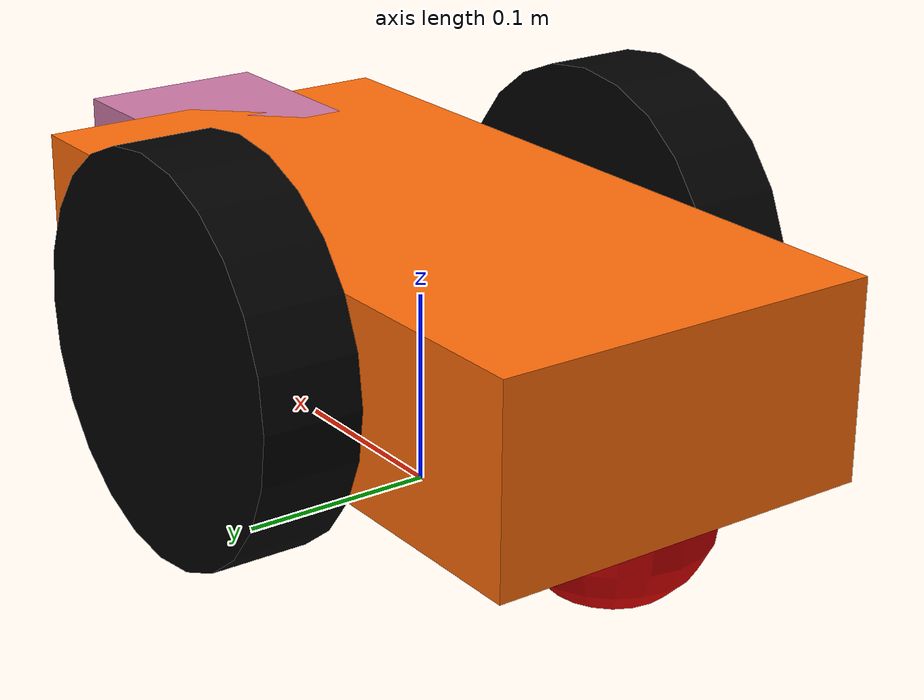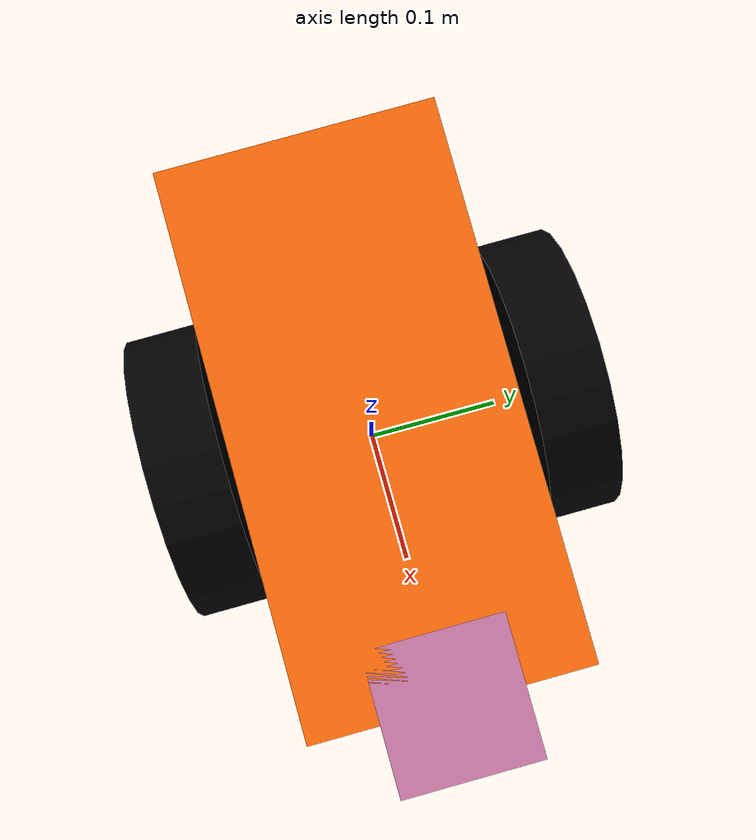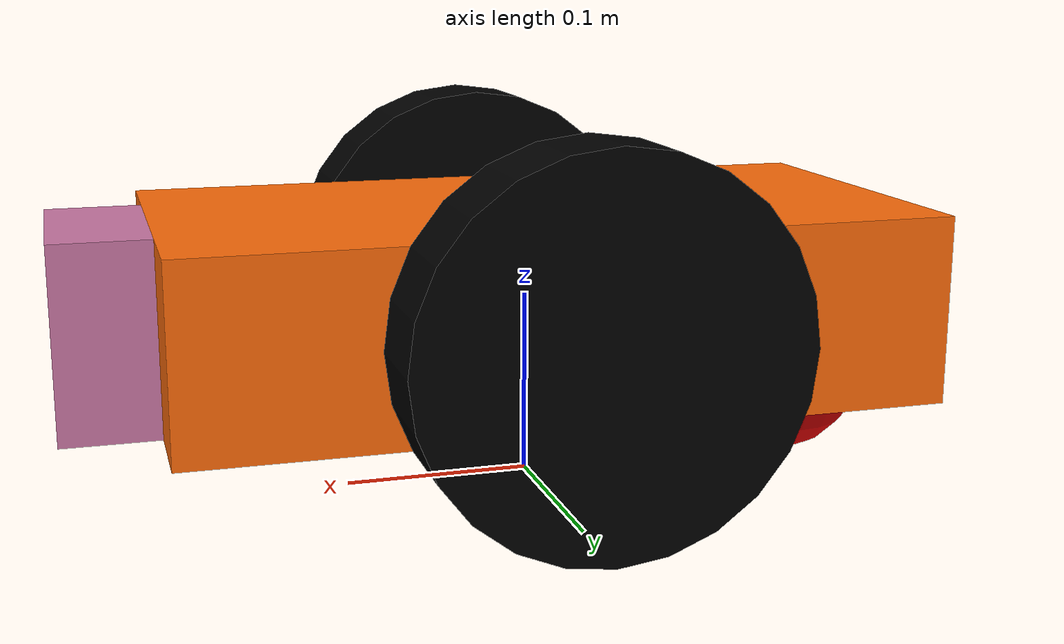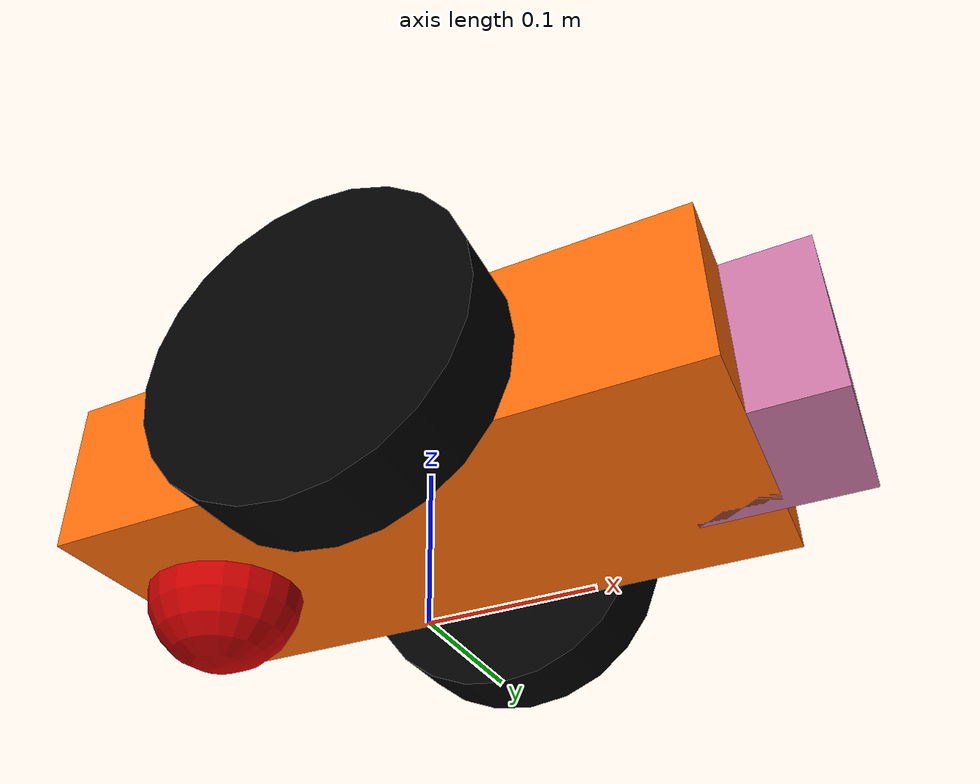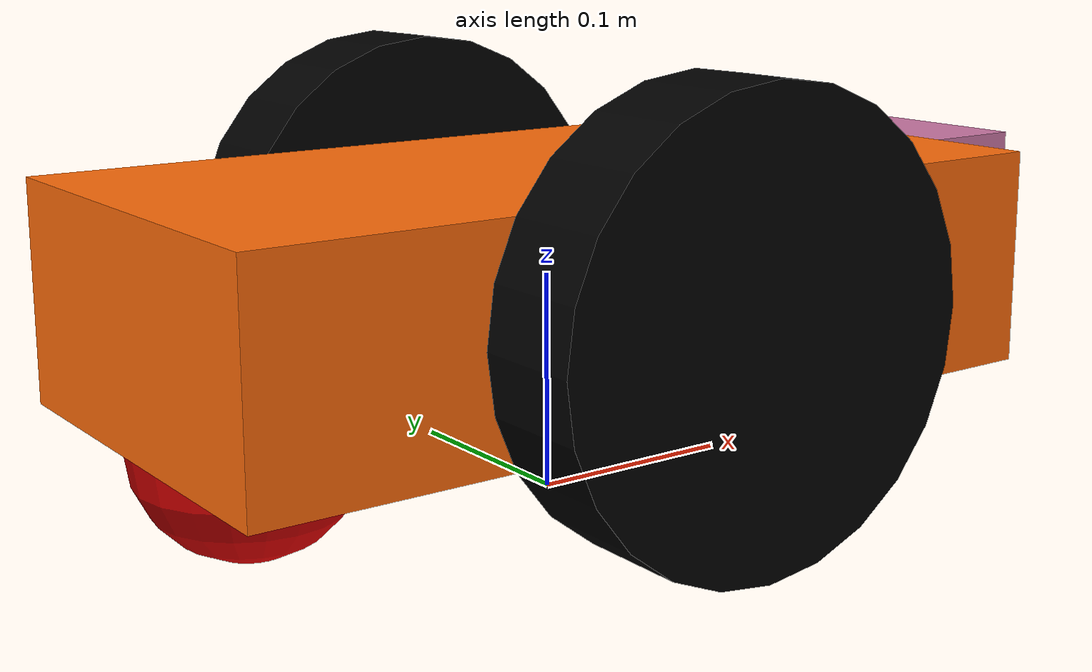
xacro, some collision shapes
<?xml version="1.0"?>
<robot name="canbot" xmlns:xacro="http://www.ros.org/wiki/xacro">
        <!-- Put here the robot description -->
    <xacro:property name="PI" value="3.1415926535897931"/>

    <xacro:property name="chassisHeight" value="0.1"/>
    <xacro:property name="chassisLength" value="0.4"/>
    <xacro:property name="chassisWidth" value="0.2"/>
    <xacro:property name="chassisMass" value="50"/>

    <xacro:property name="casterRadius" value="0.05"/>
    <xacro:property name="casterMass" value="5"/>

    <xacro:property name="wheelWidth" value="0.05"/>
    <xacro:property name="wheelRadius" value="0.1"/>
    <xacro:property name="wheelPos" value="0.2"/>
    <xacro:property name="wheelMass" value="5"/>

    <xacro:property name="cameraSize" value="0.05"/>
    <xacro:property name="cameraMass" value="0.1"/>

    <xacro:include filename="$(find canbot_description)/urdf/canbot.gazebo" />
    <xacro:include filename="$(find canbot_description)/urdf/materials.xacro" />
    <xacro:include filename="$(find canbot_description)/urdf/macros.xacro" />

    <link name='chassis'>
      <collision>
        <origin xyz="0 0 ${wheelRadius}" rpy="0 0 0"/>
        <geometry>
          <box size="${chassisLength} ${chassisWidth} ${chassisHeight}"/>
        </geometry>
      </collision>
      <visual>
        <origin xyz="0 0 ${wheelRadius}" rpy="0 0 0"/>
        <geometry>
          <box size="${chassisLength} ${chassisWidth} ${chassisHeight}"/>
        </geometry>
        <material name="orange"/>
      </visual>
      <inertial>
        <origin xyz="0 0 ${wheelRadius}" rpy="0 0 0"/>
        <mass value="${chassisMass}"/>
        <box_inertia m="${chassisMass}" x="${chassisLength}" y="${chassisWidth}" z="${chassisHeight}"/>
      </inertial>
    </link>

    <link name="footprint" />

    <joint name="base_joint" type="fixed">
      <parent link="footprint"/>
      <child link="chassis"/>
    </joint>

    <joint name="fixed" type="fixed">
      <parent link="chassis"/>
      <child link="caster_wheel"/>
    </joint>

    <link name="caster_wheel">
      <collision>
        <origin xyz="${casterRadius-chassisLength/2} 0 ${casterRadius-chassisHeight+wheelRadius}" rpy="0 0 0"/>
        <geometry>
          <sphere radius="${casterRadius}"/>
        </geometry>
      </collision>

      <visual>
        <origin xyz="${casterRadius-chassisLength/2} 0 ${casterRadius-chassisHeight+wheelRadius}" rpy="0 0 0"/>
        <geometry>
          <sphere radius="${casterRadius}"/>
        </geometry>
        <material name="red"/>
      </visual>

      <inertial>
        <origin xyz="${casterRadius-chassisLength/2} 0 ${casterRadius-chassisHeight+wheelRadius}" rpy="0 0 0"/>
        <mass value="${casterMass}"/>
        <sphere_inertia m="${casterMass}" r="${casterRadius}"/>
      </inertial>
    </link>

    <wheel lr="left" tY="-1"/>
    <wheel lr="right" tY="1"/>

     <!-- Camera -->
     <link name="camera_link">
      <collision>
        <origin xyz="0 0 0" rpy="0 0 0"/>
        <geometry>
          <box size="${cameraSize} ${cameraSize} ${cameraSize}"/>
        </geometry>
      </collision>

      <visual>
        <origin xyz="0 0 0" rpy="0 0 0"/>
        <geometry>
          <box size="${cameraSize} ${cameraSize} ${cameraSize}"/>
        </geometry>
        <material name="blue"/>
      </visual>

      <inertial>
        <mass value="${cameraMass}" />
        <origin xyz="0 0 0" rpy="0 0 0"/>
        <box_inertia m="${cameraMass}" x="${cameraSize}" y="${cameraSize}" z="${cameraSize}" />
      </inertial>
    </link>

    <joint name="joint_camera" type="fixed">
      <parent link="chassis"/>
      <child link="camera_link"/>
        <origin xyz="${chassisLength/2} 0 ${chassisHeight}" rpy="0 0 0"/>
    </joint>

    <joint name="hokuyo_joint" type="fixed">
       <axis xyz="0 1 0" />
       <origin xyz="${chassisLength/2} 0 ${chassisHeight}"  rpy="${PI} ${PI} ${PI}"/>
       <parent link="chassis"/>
       <child link="hokuyo_link"/>
     </joint>

    <link name="hokuyo_link">
        <collision>
          <origin xyz="0 0 0" rpy="0 0 0"/>
          <geometry>
        <box size="0.1 0.1 0.1"/>
          </geometry>
        </collision>

        <visual>
          <origin xyz="0 0 0" rpy="0 0 0"/>
          <geometry>
            <mesh filename="package://canbot_description/meshes/hokuyo.dae"/>
          </geometry>
        </visual>

        <inertial>
          <mass value="1e-5" />
          <origin xyz="0 0 0" rpy="0 0 0"/>
          <inertia ixx="1e-6" ixy="0" ixz="0" iyy="1e-6" iyz="0" izz="1e-6" />
        </inertial>
    </link>

</robot>

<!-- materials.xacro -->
<robot>
    <material name="black">
      <color rgba="0.0 0.0 0.0 1.0"/>
    </material>

    <material name="blue">
      <color rgba="0.0 0.0 0.8 1.0"/>
    </material>

    <material name="green">
      <color rgba="0.0 0.8 0.0 1.0"/>
    </material>

    <material name="grey">
      <color rgba="0.2 0.2 0.2 1.0"/>
    </material>

    <material name="orange">
      <color rgba="${255/255} ${108/255} ${10/255} 1.0"/>
    </material>

    <material name="brown">
      <color rgba="${222/255} ${207/255} ${195/255} 1.0"/>
    </material>

    <material name="red">
      <color rgba="0.8 0.0 0.0 1.0"/>
    </material>

    <material name="white">
      <color rgba="1.0 1.0 1.0 1.0"/>
    </material>
</robot>

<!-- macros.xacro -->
<robot>
    <macro name="cylinder_inertia" params="m r h">
      <inertia  ixx="${m*(3*r*r+h*h)/12}" ixy = "0" ixz = "0"
        iyy="${m*(3*r*r+h*h)/12}" iyz = "0"
        izz="${m*r*r/2}"
      />
    </macro>

    <macro name="box_inertia" params="m x y z">
      <inertia  ixx="${m*(y*y+z*z)/12}" ixy = "0" ixz = "0"
        iyy="${m*(x*x+z*z)/12}" iyz = "0"
        izz="${m*(x*x+z*z)/12}"
      />
    </macro>

    <macro name="sphere_inertia" params="m r">
      <inertia  ixx="${2*m*r*r/5}" ixy = "0" ixz = "0"
        iyy="${2*m*r*r/5}" iyz = "0"
        izz="${2*m*r*r/5}"
      />
    </macro>

    <macro name="wheel" params="lr tY">

    <link name="${lr}_wheel">
      <collision>
        <origin xyz="0 0 0" rpy="0 ${PI/2} ${PI/2}" />
        <geometry>
          <cylinder length="${wheelWidth}" radius="${wheelRadius}"/>
        </geometry>
      </collision>

      <visual>
        <origin xyz="0 0 0" rpy="0 ${PI/2} ${PI/2}" />
        <geometry>
          <cylinder length="${wheelWidth}" radius="${wheelRadius}"/>
        </geometry>
        <material name="black"/>
      </visual>

      <inertial>
        <origin xyz="0 0 0" rpy="0 ${PI/2} ${PI/2}" />
        <mass value="${wheelMass}"/>
        <cylinder_inertia m="${wheelMass}" r="${wheelRadius}" h="${wheelWidth}"/>
      </inertial>
    </link>

    <gazebo reference="${lr}_wheel">
      <mu1 value="1.0"/>
      <mu2 value="1.0"/>
      <kp  value="10000000.0" />
      <kd  value="1.0" />
      <fdir1 value="1 0 0"/>
      <material>Gazebo/Black</material>
    </gazebo>

    <joint name="${lr}_wheel_hinge" type="continuous">
      <parent link="chassis"/>
      <child link="${lr}_wheel"/>
    <origin xyz="${-wheelPos+chassisLength/2} ${tY*wheelWidth/2+tY*chassisWidth/2} ${wheelRadius}" rpy="0 0 0" />
      <axis xyz="0 1 0" rpy="0 0 0" />
      <limit effort="100" velocity="100"/>
      <joint_properties damping="0.0" friction="0.0"/>
    </joint>

    <transmission name="${lr}_trans">
      <type>transmission_interface/SimpleTransmission</type>
      <joint name="${lr}_wheel_hinge">
          <hardwareInterface>EffortJointInterface</hardwareInterface>
      </joint>
      <actuator name="${lr}Motor">
        <hardwareInterface>EffortJointInterface</hardwareInterface>
        <mechanicalReduction>10</mechanicalReduction>
      </actuator>
    </transmission>

    </macro>

</robot>
